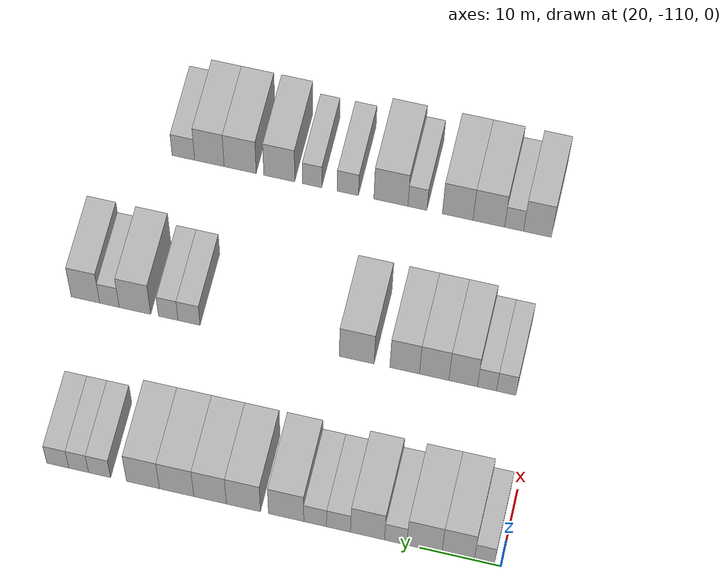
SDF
<sdf version="1.6">
 <world name="default">
  <model name="building_37">
   <static>1</static>
   <pose>25.0000 -107.9055 0 0.000000 0.000000 0.000000</pose>
   <link name="link">
    <pose>0 0 3.00 0 0 0</pose>
    <collision name="collision"><geometry><box><size>10.0000 2.4773 6.0000</size></box></geometry></collision>
    <visual name="visual">
     <cast_shadows>0</cast_shadows>
     <geometry><box><size>10.0000 2.4773 6.0000</size></box></geometry>
     <material>
      <script>
       <uri>model://HANNAS_wall/materials/scripts</uri>
       <uri>model://HANNAS_wall/materials/textures</uri>
       <name>vrc/HANNAS_wall</name>
      </script>
     </material>
    </visual>
   </link>
  </model>
  <model name="building_38">
   <static>1</static>
   <pose>25.0000 -104.6841 0 0.000000 0.000000 0.000000</pose>
   <link name="link">
    <pose>0 0 4.50 0 0 0</pose>
    <collision name="collision"><geometry><box><size>10.0000 3.9654 9.0000</size></box></geometry></collision>
    <visual name="visual">
     <cast_shadows>0</cast_shadows>
     <geometry><box><size>10.0000 3.9654 9.0000</size></box></geometry>
     <material>
      <script>
       <uri>model://HANNAS_wall/materials/scripts</uri>
       <uri>model://HANNAS_wall/materials/textures</uri>
       <name>vrc/HANNAS_wall</name>
      </script>
     </material>
    </visual>
   </link>
  </model>
  <model name="building_39">
   <static>1</static>
   <pose>25.0000 -100.5283 0 0.000000 0.000000 0.000000</pose>
   <link name="link">
    <pose>0 0 4.50 0 0 0</pose>
    <collision name="collision"><geometry><box><size>10.0000 4.3463 9.0000</size></box></geometry></collision>
    <visual name="visual">
     <cast_shadows>0</cast_shadows>
     <geometry><box><size>10.0000 4.3463 9.0000</size></box></geometry>
     <material>
      <script>
       <uri>model://HANNAS_wall/materials/scripts</uri>
       <uri>model://HANNAS_wall/materials/textures</uri>
       <name>vrc/HANNAS_wall</name>
      </script>
     </material>
    </visual>
   </link>
  </model>
  <model name="building_40">
   <static>1</static>
   <pose>25.0000 -96.9759 0 0.000000 0.000000 0.000000</pose>
   <link name="link">
    <pose>0 0 3.00 0 0 0</pose>
    <collision name="collision"><geometry><box><size>10.0000 2.7586 6.0000</size></box></geometry></collision>
    <visual name="visual">
     <cast_shadows>0</cast_shadows>
     <geometry><box><size>10.0000 2.7586 6.0000</size></box></geometry>
     <material>
      <script>
       <uri>model://HANNAS_wall/materials/scripts</uri>
       <uri>model://HANNAS_wall/materials/textures</uri>
       <name>vrc/HANNAS_wall</name>
      </script>
     </material>
    </visual>
   </link>
  </model>
  <model name="building_41">
   <static>1</static>
   <pose>25.0000 -93.4938 0 0.000000 0.000000 0.000000</pose>
   <link name="link">
    <pose>0 0 4.50 0 0 0</pose>
    <collision name="collision"><geometry><box><size>10.0000 4.2056 9.0000</size></box></geometry></collision>
    <visual name="visual">
     <cast_shadows>0</cast_shadows>
     <geometry><box><size>10.0000 4.2056 9.0000</size></box></geometry>
     <material>
      <script>
       <uri>model://HANNAS_wall/materials/scripts</uri>
       <uri>model://HANNAS_wall/materials/textures</uri>
       <name>vrc/HANNAS_wall</name>
      </script>
     </material>
    </visual>
   </link>
  </model>
  <model name="building_42">
   <static>1</static>
   <pose>25.0000 -89.9001 0 0.000000 0.000000 0.000000</pose>
   <link name="link">
    <pose>0 0 3.00 0 0 0</pose>
    <collision name="collision"><geometry><box><size>10.0000 2.9819 6.0000</size></box></geometry></collision>
    <visual name="visual">
     <cast_shadows>0</cast_shadows>
     <geometry><box><size>10.0000 2.9819 6.0000</size></box></geometry>
     <material>
      <script>
       <uri>model://HANNAS_wall/materials/scripts</uri>
       <uri>model://HANNAS_wall/materials/textures</uri>
       <name>vrc/HANNAS_wall</name>
      </script>
     </material>
    </visual>
   </link>
  </model>
  <model name="building_43">
   <static>1</static>
   <pose>25.0000 -86.9947 0 0.000000 0.000000 0.000000</pose>
   <link name="link">
    <pose>0 0 3.00 0 0 0</pose>
    <collision name="collision"><geometry><box><size>10.0000 2.8288 6.0000</size></box></geometry></collision>
    <visual name="visual">
     <cast_shadows>0</cast_shadows>
     <geometry><box><size>10.0000 2.8288 6.0000</size></box></geometry>
     <material>
      <script>
       <uri>model://HANNAS_wall/materials/scripts</uri>
       <uri>model://HANNAS_wall/materials/textures</uri>
       <name>vrc/HANNAS_wall</name>
      </script>
     </material>
    </visual>
   </link>
  </model>
  <model name="building_44">
   <static>1</static>
   <pose>25.0000 -83.3818 0 0.000000 0.000000 0.000000</pose>
   <link name="link">
    <pose>0 0 4.50 0 0 0</pose>
    <collision name="collision"><geometry><box><size>10.0000 4.3971 9.0000</size></box></geometry></collision>
    <visual name="visual">
     <cast_shadows>0</cast_shadows>
     <geometry><box><size>10.0000 4.3971 9.0000</size></box></geometry>
     <material>
      <script>
       <uri>model://HANNAS_wall/materials/scripts</uri>
       <uri>model://HANNAS_wall/materials/textures</uri>
       <name>vrc/HANNAS_wall</name>
      </script>
     </material>
    </visual>
   </link>
  </model>
  <model name="building_45">
   <static>1</static>
   <pose>25.0000 -78.0550 0 0.000000 0.000000 0.000000</pose>
   <link name="link">
    <pose>0 0 4.50 0 0 0</pose>
    <collision name="collision"><geometry><box><size>10.0000 4.2565 9.0000</size></box></geometry></collision>
    <visual name="visual">
     <cast_shadows>0</cast_shadows>
     <geometry><box><size>10.0000 4.2565 9.0000</size></box></geometry>
     <material>
      <script>
       <uri>model://HANNAS_wall/materials/scripts</uri>
       <uri>model://HANNAS_wall/materials/textures</uri>
       <name>vrc/HANNAS_wall</name>
      </script>
     </material>
    </visual>
   </link>
  </model>
  <model name="building_46">
   <static>1</static>
   <pose>25.0000 -73.8800 0 0.000000 0.000000 0.000000</pose>
   <link name="link">
    <pose>0 0 4.50 0 0 0</pose>
    <collision name="collision"><geometry><box><size>10.0000 4.0935 9.0000</size></box></geometry></collision>
    <visual name="visual">
     <cast_shadows>0</cast_shadows>
     <geometry><box><size>10.0000 4.0935 9.0000</size></box></geometry>
     <material>
      <script>
       <uri>model://HANNAS_wall/materials/scripts</uri>
       <uri>model://HANNAS_wall/materials/textures</uri>
       <name>vrc/HANNAS_wall</name>
      </script>
     </material>
    </visual>
   </link>
  </model>
  <model name="building_47">
   <static>1</static>
   <pose>25.0000 -69.6777 0 0.000000 0.000000 0.000000</pose>
   <link name="link">
    <pose>0 0 4.50 0 0 0</pose>
    <collision name="collision"><geometry><box><size>10.0000 4.3112 9.0000</size></box></geometry></collision>
    <visual name="visual">
     <cast_shadows>0</cast_shadows>
     <geometry><box><size>10.0000 4.3112 9.0000</size></box></geometry>
     <material>
      <script>
       <uri>model://HANNAS_wall/materials/scripts</uri>
       <uri>model://HANNAS_wall/materials/textures</uri>
       <name>vrc/HANNAS_wall</name>
      </script>
     </material>
    </visual>
   </link>
  </model>
  <model name="building_48">
   <static>1</static>
   <pose>25.0000 -65.4500 0 0.000000 0.000000 0.000000</pose>
   <link name="link">
    <pose>0 0 4.50 0 0 0</pose>
    <collision name="collision"><geometry><box><size>10.0000 4.1443 9.0000</size></box></geometry></collision>
    <visual name="visual">
     <cast_shadows>0</cast_shadows>
     <geometry><box><size>10.0000 4.1443 9.0000</size></box></geometry>
     <material>
      <script>
       <uri>model://HANNAS_wall/materials/scripts</uri>
       <uri>model://HANNAS_wall/materials/textures</uri>
       <name>vrc/HANNAS_wall</name>
      </script>
     </material>
    </visual>
   </link>
  </model>
  <model name="building_49">
   <static>1</static>
   <pose>25.0000 -59.9845 0 0.000000 0.000000 0.000000</pose>
   <link name="link">
    <pose>0 0 3.00 0 0 0</pose>
    <collision name="collision"><geometry><box><size>10.0000 2.7867 6.0000</size></box></geometry></collision>
    <visual name="visual">
     <cast_shadows>0</cast_shadows>
     <geometry><box><size>10.0000 2.7867 6.0000</size></box></geometry>
     <material>
      <script>
       <uri>model://HANNAS_wall/materials/scripts</uri>
       <uri>model://HANNAS_wall/materials/textures</uri>
       <name>vrc/HANNAS_wall</name>
      </script>
     </material>
    </visual>
   </link>
  </model>
  <model name="building_50">
   <static>1</static>
   <pose>25.0000 -57.3420 0 0.000000 0.000000 0.000000</pose>
   <link name="link">
    <pose>0 0 3.00 0 0 0</pose>
    <collision name="collision"><geometry><box><size>10.0000 2.4983 6.0000</size></box></geometry></collision>
    <visual name="visual">
     <cast_shadows>0</cast_shadows>
     <geometry><box><size>10.0000 2.4983 6.0000</size></box></geometry>
     <material>
      <script>
       <uri>model://HANNAS_wall/materials/scripts</uri>
       <uri>model://HANNAS_wall/materials/textures</uri>
       <name>vrc/HANNAS_wall</name>
      </script>
     </material>
    </visual>
   </link>
  </model>
  <model name="building_51">
   <static>1</static>
   <pose>25.0000 -54.7018 0 0.000000 0.000000 0.000000</pose>
   <link name="link">
    <pose>0 0 3.00 0 0 0</pose>
    <collision name="collision"><geometry><box><size>10.0000 2.7822 6.0000</size></box></geometry></collision>
    <visual name="visual">
     <cast_shadows>0</cast_shadows>
     <geometry><box><size>10.0000 2.7822 6.0000</size></box></geometry>
     <material>
      <script>
       <uri>model://HANNAS_wall/materials/scripts</uri>
       <uri>model://HANNAS_wall/materials/textures</uri>
       <name>vrc/HANNAS_wall</name>
      </script>
     </material>
    </visual>
   </link>
  </model>
  <model name="building_162">
   <static>1</static>
   <pose>47.0000 -105.9998 0 0.000000 0.000000 0.000000</pose>
   <link name="link">
    <pose>0 0 3.00 0 0 0</pose>
    <collision name="collision"><geometry><box><size>10.0000 2.4426 6.0000</size></box></geometry></collision>
    <visual name="visual">
     <cast_shadows>0</cast_shadows>
     <geometry><box><size>10.0000 2.4426 6.0000</size></box></geometry>
     <material>
      <script>
       <uri>model://HANNAS_wall/materials/scripts</uri>
       <uri>model://HANNAS_wall/materials/textures</uri>
       <name>vrc/HANNAS_wall</name>
      </script>
     </material>
    </visual>
   </link>
  </model>
  <model name="building_163">
   <static>1</static>
   <pose>47.0000 -103.5715 0 0.000000 0.000000 0.000000</pose>
   <link name="link">
    <pose>0 0 3.00 0 0 0</pose>
    <collision name="collision"><geometry><box><size>10.0000 2.4141 6.0000</size></box></geometry></collision>
    <visual name="visual">
     <cast_shadows>0</cast_shadows>
     <geometry><box><size>10.0000 2.4141 6.0000</size></box></geometry>
     <material>
      <script>
       <uri>model://HANNAS_wall/materials/scripts</uri>
       <uri>model://HANNAS_wall/materials/textures</uri>
       <name>vrc/HANNAS_wall</name>
      </script>
     </material>
    </visual>
   </link>
  </model>
  <model name="building_164">
   <static>1</static>
   <pose>47.0000 -100.5625 0 0.000000 0.000000 0.000000</pose>
   <link name="link">
    <pose>0 0 4.50 0 0 0</pose>
    <collision name="collision"><geometry><box><size>10.0000 3.6038 9.0000</size></box></geometry></collision>
    <visual name="visual">
     <cast_shadows>0</cast_shadows>
     <geometry><box><size>10.0000 3.6038 9.0000</size></box></geometry>
     <material>
      <script>
       <uri>model://HANNAS_wall/materials/scripts</uri>
       <uri>model://HANNAS_wall/materials/textures</uri>
       <name>vrc/HANNAS_wall</name>
      </script>
     </material>
    </visual>
   </link>
  </model>
  <model name="building_165">
   <static>1</static>
   <pose>47.0000 -96.8923 0 0.000000 0.000000 0.000000</pose>
   <link name="link">
    <pose>0 0 4.50 0 0 0</pose>
    <collision name="collision"><geometry><box><size>10.0000 3.7366 9.0000</size></box></geometry></collision>
    <visual name="visual">
     <cast_shadows>0</cast_shadows>
     <geometry><box><size>10.0000 3.7366 9.0000</size></box></geometry>
     <material>
      <script>
       <uri>model://HANNAS_wall/materials/scripts</uri>
       <uri>model://HANNAS_wall/materials/textures</uri>
       <name>vrc/HANNAS_wall</name>
      </script>
     </material>
    </visual>
   </link>
  </model>
  <model name="building_166">
   <static>1</static>
   <pose>47.0000 -93.1430 0 0.000000 0.000000 0.000000</pose>
   <link name="link">
    <pose>0 0 4.50 0 0 0</pose>
    <collision name="collision"><geometry><box><size>10.0000 3.7621 9.0000</size></box></geometry></collision>
    <visual name="visual">
     <cast_shadows>0</cast_shadows>
     <geometry><box><size>10.0000 3.7621 9.0000</size></box></geometry>
     <material>
      <script>
       <uri>model://HANNAS_wall/materials/scripts</uri>
       <uri>model://HANNAS_wall/materials/textures</uri>
       <name>vrc/HANNAS_wall</name>
      </script>
     </material>
    </visual>
   </link>
  </model>
  <model name="building_167">
   <static>1</static>
   <pose>47.0000 -87.0473 0 0.000000 0.000000 0.000000</pose>
   <link name="link">
    <pose>0 0 4.50 0 0 0</pose>
    <collision name="collision"><geometry><box><size>10.0000 4.4292 9.0000</size></box></geometry></collision>
    <visual name="visual">
     <cast_shadows>0</cast_shadows>
     <geometry><box><size>10.0000 4.4292 9.0000</size></box></geometry>
     <material>
      <script>
       <uri>model://HANNAS_wall/materials/scripts</uri>
       <uri>model://HANNAS_wall/materials/textures</uri>
       <name>vrc/HANNAS_wall</name>
      </script>
     </material>
    </visual>
   </link>
  </model>
  <model name="building_168">
   <static>1</static>
   <pose>47.0000 -65.5724 0 0.000000 0.000000 0.000000</pose>
   <link name="link">
    <pose>0 0 3.00 0 0 0</pose>
    <collision name="collision"><geometry><box><size>10.0000 2.8402 6.0000</size></box></geometry></collision>
    <visual name="visual">
     <cast_shadows>0</cast_shadows>
     <geometry><box><size>10.0000 2.8402 6.0000</size></box></geometry>
     <material>
      <script>
       <uri>model://HANNAS_wall/materials/scripts</uri>
       <uri>model://HANNAS_wall/materials/textures</uri>
       <name>vrc/HANNAS_wall</name>
      </script>
     </material>
    </visual>
   </link>
  </model>
  <model name="building_169">
   <static>1</static>
   <pose>47.0000 -62.8886 0 0.000000 0.000000 0.000000</pose>
   <link name="link">
    <pose>0 0 3.00 0 0 0</pose>
    <collision name="collision"><geometry><box><size>10.0000 2.5274 6.0000</size></box></geometry></collision>
    <visual name="visual">
     <cast_shadows>0</cast_shadows>
     <geometry><box><size>10.0000 2.5274 6.0000</size></box></geometry>
     <material>
      <script>
       <uri>model://HANNAS_wall/materials/scripts</uri>
       <uri>model://HANNAS_wall/materials/textures</uri>
       <name>vrc/HANNAS_wall</name>
      </script>
     </material>
    </visual>
   </link>
  </model>
  <model name="building_170">
   <static>1</static>
   <pose>47.0000 -58.5935 0 0.000000 0.000000 0.000000</pose>
   <link name="link">
    <pose>0 0 4.50 0 0 0</pose>
    <collision name="collision"><geometry><box><size>10.0000 4.0627 9.0000</size></box></geometry></collision>
    <visual name="visual">
     <cast_shadows>0</cast_shadows>
     <geometry><box><size>10.0000 4.0627 9.0000</size></box></geometry>
     <material>
      <script>
       <uri>model://HANNAS_wall/materials/scripts</uri>
       <uri>model://HANNAS_wall/materials/textures</uri>
       <name>vrc/HANNAS_wall</name>
      </script>
     </material>
    </visual>
   </link>
  </model>
  <model name="building_171">
   <static>1</static>
   <pose>47.0000 -55.2957 0 0.000000 0.000000 0.000000</pose>
   <link name="link">
    <pose>0 0 3.00 0 0 0</pose>
    <collision name="collision"><geometry><box><size>10.0000 2.5330 6.0000</size></box></geometry></collision>
    <visual name="visual">
     <cast_shadows>0</cast_shadows>
     <geometry><box><size>10.0000 2.5330 6.0000</size></box></geometry>
     <material>
      <script>
       <uri>model://HANNAS_wall/materials/scripts</uri>
       <uri>model://HANNAS_wall/materials/textures</uri>
       <name>vrc/HANNAS_wall</name>
      </script>
     </material>
    </visual>
   </link>
  </model>
  <model name="building_172">
   <static>1</static>
   <pose>47.0000 -52.1849 0 0.000000 0.000000 0.000000</pose>
   <link name="link">
    <pose>0 0 4.50 0 0 0</pose>
    <collision name="collision"><geometry><box><size>10.0000 3.6887 9.0000</size></box></geometry></collision>
    <visual name="visual">
     <cast_shadows>0</cast_shadows>
     <geometry><box><size>10.0000 3.6887 9.0000</size></box></geometry>
     <material>
      <script>
       <uri>model://HANNAS_wall/materials/scripts</uri>
       <uri>model://HANNAS_wall/materials/textures</uri>
       <name>vrc/HANNAS_wall</name>
      </script>
     </material>
    </visual>
   </link>
  </model>
  <model name="building_287">
   <static>1</static>
   <pose>69.0000 -105.4050 0 0.000000 0.000000 0.000000</pose>
   <link name="link">
    <pose>0 0 4.50 0 0 0</pose>
    <collision name="collision"><geometry><box><size>10.0000 3.6060 9.0000</size></box></geometry></collision>
    <visual name="visual">
     <cast_shadows>0</cast_shadows>
     <geometry><box><size>10.0000 3.6060 9.0000</size></box></geometry>
     <material>
      <script>
       <uri>model://HANNAS_wall/materials/scripts</uri>
       <uri>model://HANNAS_wall/materials/textures</uri>
       <name>vrc/HANNAS_wall</name>
      </script>
     </material>
    </visual>
   </link>
  </model>
  <model name="building_288">
   <static>1</static>
   <pose>69.0000 -102.3815 0 0.000000 0.000000 0.000000</pose>
   <link name="link">
    <pose>0 0 3.00 0 0 0</pose>
    <collision name="collision"><geometry><box><size>10.0000 2.4408 6.0000</size></box></geometry></collision>
    <visual name="visual">
     <cast_shadows>0</cast_shadows>
     <geometry><box><size>10.0000 2.4408 6.0000</size></box></geometry>
     <material>
      <script>
       <uri>model://HANNAS_wall/materials/scripts</uri>
       <uri>model://HANNAS_wall/materials/textures</uri>
       <name>vrc/HANNAS_wall</name>
      </script>
     </material>
    </visual>
   </link>
  </model>
  <model name="building_289">
   <static>1</static>
   <pose>69.0000 -99.1207 0 0.000000 0.000000 0.000000</pose>
   <link name="link">
    <pose>0 0 4.50 0 0 0</pose>
    <collision name="collision"><geometry><box><size>10.0000 4.0807 9.0000</size></box></geometry></collision>
    <visual name="visual">
     <cast_shadows>0</cast_shadows>
     <geometry><box><size>10.0000 4.0807 9.0000</size></box></geometry>
     <material>
      <script>
       <uri>model://HANNAS_wall/materials/scripts</uri>
       <uri>model://HANNAS_wall/materials/textures</uri>
       <name>vrc/HANNAS_wall</name>
      </script>
     </material>
    </visual>
   </link>
  </model>
  <model name="building_290">
   <static>1</static>
   <pose>69.0000 -95.0863 0 0.000000 0.000000 0.000000</pose>
   <link name="link">
    <pose>0 0 4.50 0 0 0</pose>
    <collision name="collision"><geometry><box><size>10.0000 3.9881 9.0000</size></box></geometry></collision>
    <visual name="visual">
     <cast_shadows>0</cast_shadows>
     <geometry><box><size>10.0000 3.9881 9.0000</size></box></geometry>
     <material>
      <script>
       <uri>model://HANNAS_wall/materials/scripts</uri>
       <uri>model://HANNAS_wall/materials/textures</uri>
       <name>vrc/HANNAS_wall</name>
      </script>
     </material>
    </visual>
   </link>
  </model>
  <model name="building_291">
   <static>1</static>
   <pose>69.0000 -89.8541 0 0.000000 0.000000 0.000000</pose>
   <link name="link">
    <pose>0 0 3.00 0 0 0</pose>
    <collision name="collision"><geometry><box><size>10.0000 2.4762 6.0000</size></box></geometry></collision>
    <visual name="visual">
     <cast_shadows>0</cast_shadows>
     <geometry><box><size>10.0000 2.4762 6.0000</size></box></geometry>
     <material>
      <script>
       <uri>model://HANNAS_wall/materials/scripts</uri>
       <uri>model://HANNAS_wall/materials/textures</uri>
       <name>vrc/HANNAS_wall</name>
      </script>
     </material>
    </visual>
   </link>
  </model>
  <model name="building_292">
   <static>1</static>
   <pose>69.0000 -86.3943 0 0.000000 0.000000 0.000000</pose>
   <link name="link">
    <pose>0 0 4.50 0 0 0</pose>
    <collision name="collision"><geometry><box><size>10.0000 4.4435 9.0000</size></box></geometry></collision>
    <visual name="visual">
     <cast_shadows>0</cast_shadows>
     <geometry><box><size>10.0000 4.4435 9.0000</size></box></geometry>
     <material>
      <script>
       <uri>model://HANNAS_wall/materials/scripts</uri>
       <uri>model://HANNAS_wall/materials/textures</uri>
       <name>vrc/HANNAS_wall</name>
      </script>
     </material>
    </visual>
   </link>
  </model>
  <model name="building_293">
   <static>1</static>
   <pose>69.0000 -80.7674 0 0.000000 0.000000 0.000000</pose>
   <link name="link">
    <pose>0 0 3.00 0 0 0</pose>
    <collision name="collision"><geometry><box><size>10.0000 2.8103 6.0000</size></box></geometry></collision>
    <visual name="visual">
     <cast_shadows>0</cast_shadows>
     <geometry><box><size>10.0000 2.8103 6.0000</size></box></geometry>
     <material>
      <script>
       <uri>model://HANNAS_wall/materials/scripts</uri>
       <uri>model://HANNAS_wall/materials/textures</uri>
       <name>vrc/HANNAS_wall</name>
      </script>
     </material>
    </visual>
   </link>
  </model>
  <model name="building_294">
   <static>1</static>
   <pose>69.0000 -76.0904 0 0.000000 0.000000 0.000000</pose>
   <link name="link">
    <pose>0 0 3.00 0 0 0</pose>
    <collision name="collision"><geometry><box><size>10.0000 2.5436 6.0000</size></box></geometry></collision>
    <visual name="visual">
     <cast_shadows>0</cast_shadows>
     <geometry><box><size>10.0000 2.5436 6.0000</size></box></geometry>
     <material>
      <script>
       <uri>model://HANNAS_wall/materials/scripts</uri>
       <uri>model://HANNAS_wall/materials/textures</uri>
       <name>vrc/HANNAS_wall</name>
      </script>
     </material>
    </visual>
   </link>
  </model>
  <model name="building_295">
   <static>1</static>
   <pose>69.0000 -71.7879 0 0.000000 0.000000 0.000000</pose>
   <link name="link">
    <pose>0 0 4.50 0 0 0</pose>
    <collision name="collision"><geometry><box><size>10.0000 4.0615 9.0000</size></box></geometry></collision>
    <visual name="visual">
     <cast_shadows>0</cast_shadows>
     <geometry><box><size>10.0000 4.0615 9.0000</size></box></geometry>
     <material>
      <script>
       <uri>model://HANNAS_wall/materials/scripts</uri>
       <uri>model://HANNAS_wall/materials/textures</uri>
       <name>vrc/HANNAS_wall</name>
      </script>
     </material>
    </visual>
   </link>
  </model>
  <model name="building_296">
   <static>1</static>
   <pose>69.0000 -66.6481 0 0.000000 0.000000 0.000000</pose>
   <link name="link">
    <pose>0 0 4.50 0 0 0</pose>
    <collision name="collision"><geometry><box><size>10.0000 4.2180 9.0000</size></box></geometry></collision>
    <visual name="visual">
     <cast_shadows>0</cast_shadows>
     <geometry><box><size>10.0000 4.2180 9.0000</size></box></geometry>
     <material>
      <script>
       <uri>model://HANNAS_wall/materials/scripts</uri>
       <uri>model://HANNAS_wall/materials/textures</uri>
       <name>vrc/HANNAS_wall</name>
      </script>
     </material>
    </visual>
   </link>
  </model>
  <model name="building_297">
   <static>1</static>
   <pose>69.0000 -62.5900 0 0.000000 0.000000 0.000000</pose>
   <link name="link">
    <pose>0 0 4.50 0 0 0</pose>
    <collision name="collision"><geometry><box><size>10.0000 3.8982 9.0000</size></box></geometry></collision>
    <visual name="visual">
     <cast_shadows>0</cast_shadows>
     <geometry><box><size>10.0000 3.8982 9.0000</size></box></geometry>
     <material>
      <script>
       <uri>model://HANNAS_wall/materials/scripts</uri>
       <uri>model://HANNAS_wall/materials/textures</uri>
       <name>vrc/HANNAS_wall</name>
      </script>
     </material>
    </visual>
   </link>
  </model>
  <model name="building_298">
   <static>1</static>
   <pose>69.0000 -59.1495 0 0.000000 0.000000 0.000000</pose>
   <link name="link">
    <pose>0 0 3.00 0 0 0</pose>
    <collision name="collision"><geometry><box><size>10.0000 2.9828 6.0000</size></box></geometry></collision>
    <visual name="visual">
     <cast_shadows>0</cast_shadows>
     <geometry><box><size>10.0000 2.9828 6.0000</size></box></geometry>
     <material>
      <script>
       <uri>model://HANNAS_wall/materials/scripts</uri>
       <uri>model://HANNAS_wall/materials/textures</uri>
       <name>vrc/HANNAS_wall</name>
      </script>
     </material>
    </visual>
   </link>
  </model>
 </world>
</sdf>
